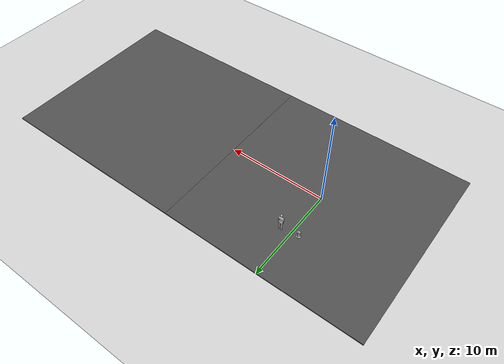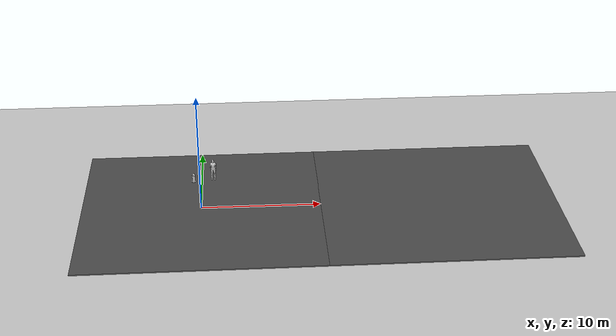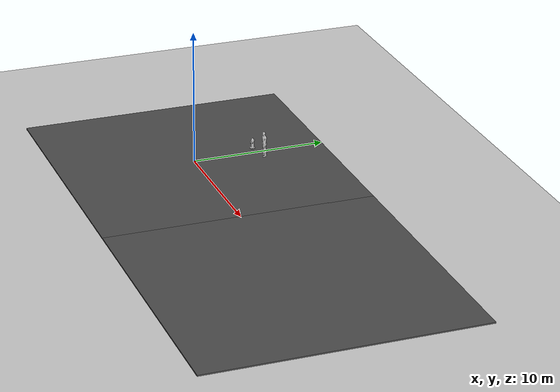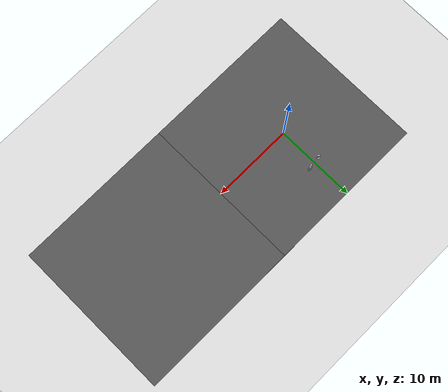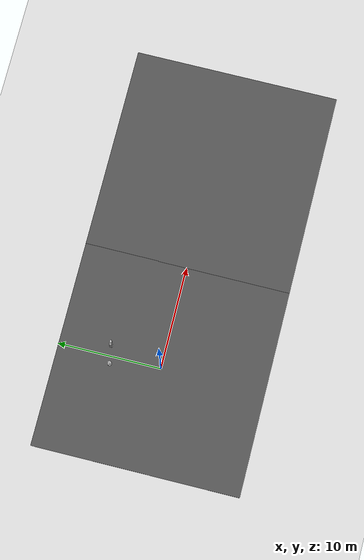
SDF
<sdf version="1.6">
 <world name="default">
  <light name="sun" type="directional">
   <pose>0 0 10 0 -0 0</pose>
   <diffuse>0.8 0.8 0.8 1</diffuse>
   <specular>0.1 0.1 0.1 1</specular>
   <attenuation>
    <range>1000</range>
    <constant>0.9</constant>
    <linear>0.01</linear>
    <quadratic>0.001</quadratic>
   </attenuation>
   <direction>-0.5 0.5 -1</direction>
  </light>
  <model name="ground_plane">
   <static>1</static>
   <link name="link">
    <collision name="collision">
     <geometry><plane><normal>0 0 1</normal><size>100 100</size></plane></geometry>
     <surface><friction><ode><mu>100</mu><mu2>50</mu2></ode></friction></surface>
    </collision>
    <visual name="visual">
     <cast_shadows>0</cast_shadows>
     <geometry><plane><normal>0 0 1</normal><size>100 100</size></plane></geometry>
     <material>
      <script><uri>file://media/materials/scripts/gazebo.material</uri><name>Gazebo/Grey</name></script>
     </material>
    </visual>
   </link>
  </model>
  <gravity>0 0 -9.8</gravity>
  <magnetic_field>6e-06 2.3e-05 -4.2e-05</magnetic_field>
  <atmosphere type="adiabatic"/>
  <physics name="default_physics" default="0" type="ode">
   <max_step_size>0.001</max_step_size>
   <real_time_factor>1</real_time_factor>
   <real_time_update_rate>1000</real_time_update_rate>
  </physics>
  <scene><ambient>0.4 0.4 0.4 1</ambient><background>0.7 0.7 0.7 1</background><shadows>1</shadows></scene>
  <spherical_coordinates>
   <surface_model>EARTH_WGS84</surface_model>
   <latitude_deg>0</latitude_deg>
   <longitude_deg>0</longitude_deg>
   <elevation>0</elevation>
   <heading_deg>0</heading_deg>
  </spherical_coordinates>
  <model name="asphalt_plane_0">
   <static>1</static>
   <link name="link">
    <collision name="collision"><geometry><box><size>20 20 0.1</size></box></geometry></collision>
    <visual name="visual">
     <cast_shadows>0</cast_shadows>
     <geometry><box><size>20 20 0.1</size></box></geometry>
     <material>
      <script>
       <uri>model://asphalt_plane/materials/scripts</uri>
       <uri>model://asphalt_plane/materials/textures</uri>
       <name>vrc/asphalt</name>
      </script>
     </material>
    </visual>
   </link>
   <pose>20.0157 -0.037426 0 0 -0 0</pose>
  </model>
  <model name="person_standing">
   <link name="link">
    <inertial>
     <pose>0 -0.1 0.95 0 -0 0</pose>
     <mass>80</mass>
     <inertia><ixx>24.88</ixx><ixy>0</ixy><ixz>0</ixz><iyy>25.73</iyy><iyz>0</iyz><izz>2.48</izz></inertia>
    </inertial>
    <collision name="bottom">
     <pose>0 -0.1 0.01 0 -0 0</pose>
     <geometry><box><size>0.5 0.35 0.02</size></box></geometry>
    </collision>
    <collision name="person">
     <pose>0 0 0.02 0.04 -0 0</pose>
     <geometry><mesh><uri>model://person_standing/meshes/standing.dae</uri><scale>1 1 1</scale></mesh></geometry>
    </collision>
    <visual name="visual">
     <pose>0 0 0.02 0.04 -0 0</pose>
     <geometry><mesh><uri>model://person_standing/meshes/standing.dae</uri><scale>1 1 1</scale></mesh></geometry>
    </visual>
   </link>
   <pose>1.00164 5.15252 0.05 -1e-06 -1e-06 0.002897</pose>
  </model>
  <model name="fire_hydrant">
   <static>1</static>
   <link name="link">
    <collision name="collision">
     <geometry><mesh><uri>model://fire_hydrant/meshes/fire_hydrant.dae</uri><scale>1 1 1</scale></mesh></geometry>
    </collision>
    <visual name="visual">
     <geometry><mesh><uri>model://fire_hydrant/meshes/fire_hydrant.dae</uri><scale>1 1 1</scale></mesh></geometry>
    </visual>
   </link>
   <pose>-0.70337 4.77916 -0.070287 0 -0 0</pose>
  </model>
  <model name="asphalt_plane_1">
   <static>1</static>
   <link name="link">
    <collision name="collision"><geometry><box><size>20 20 0.1</size></box></geometry></collision>
    <visual name="visual">
     <cast_shadows>0</cast_shadows>
     <geometry><box><size>20 20 0.1</size></box></geometry>
     <material>
      <script>
       <uri>model://asphalt_plane/materials/scripts</uri>
       <uri>model://asphalt_plane/materials/textures</uri>
       <name>vrc/asphalt</name>
      </script>
     </material>
    </visual>
   </link>
   <pose>0.053846 -0.039368 0 0 -0 0</pose>
  </model>
 </world>
</sdf>
